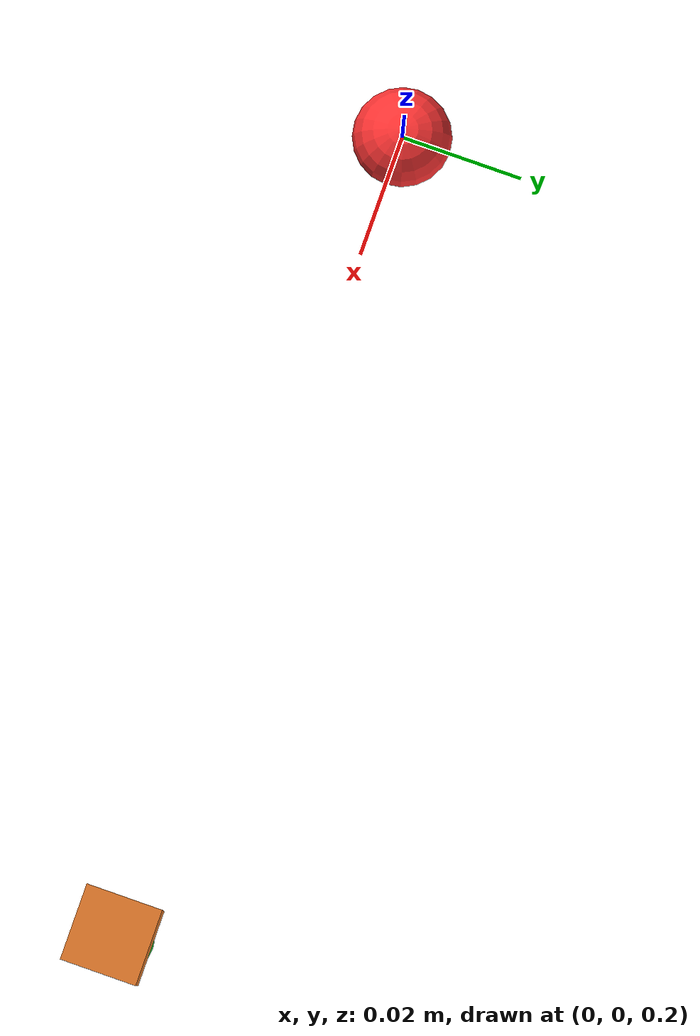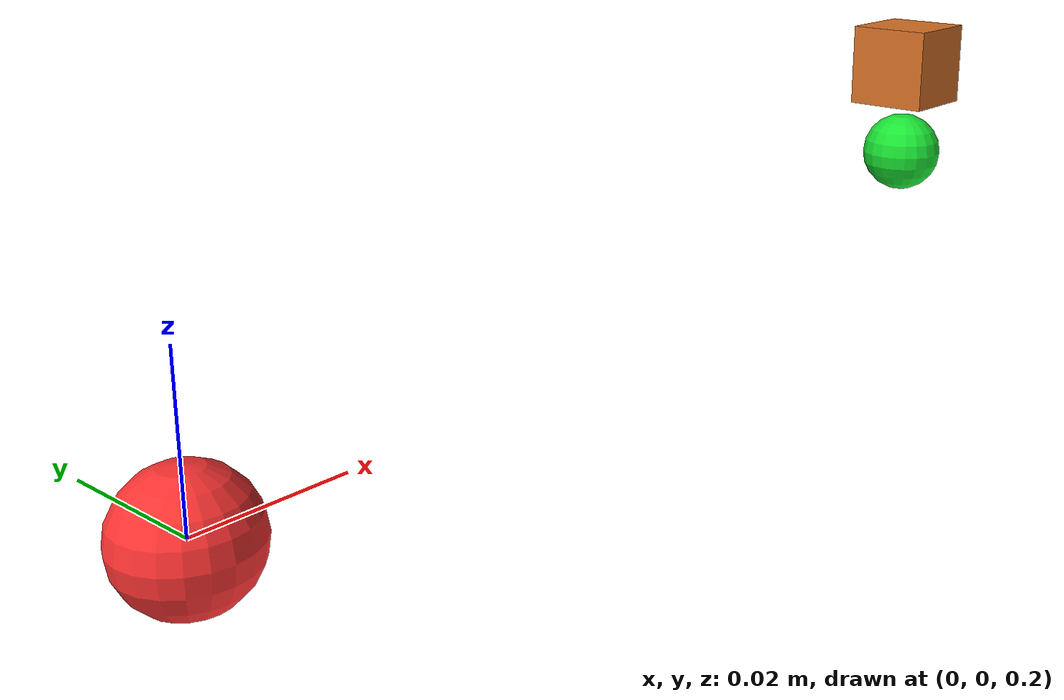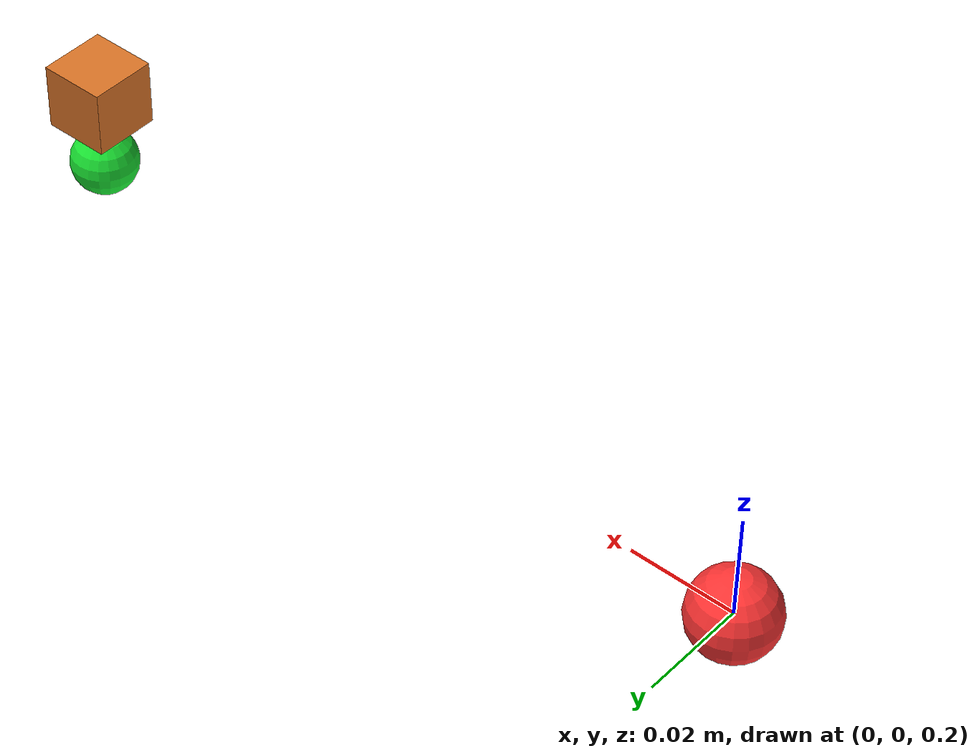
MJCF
<mujoco model="spoon fixture">
  <compiler angle="radian"/>
  <option timestep="0.001" gravity="0 0 -9.81" integrator="implicitfast" solver="Newton" iterations="50"/>
  <default>
    <default class="tool">
      <geom contype="1" conaffinity="1" group="3" friction="0.5 0.005 0.0001" solref="0.005 1" solimp="0.9 0.95 0.001" condim="3"/>
    </default>
  </default>
  <worldbody>
    <body name="fixture_base" pos="0 0 0.2">
      <body name="tool_mount" gravcomp="0">
        <site name="ft_site" pos="0 0 0" size="0.008" rgba="1 0.2 0.2 1"/>
        <geom name="tool_mount_geom" type="cylinder" size="0.016 0.008" pos="0 0 0.008" mass="0.03" class="tool" rgba="0.35 0.35 0.38 1"/>
        <geom name="tool_handle" type="box" size="0.05 0.004 0.003" pos="0.062 0 0.012" mass="0.02" class="tool" rgba="0.55 0.55 0.58 1"/>
        <geom name="bowl_bottom" type="box" size="0.0245 0.017 0.001" pos="0.1345 0 0.015" mass="0.012" class="tool" rgba="0.75 0.75 0.8 1"/>
        <geom name="bowl_back" type="box" size="0.0015 0.017 0.0045" pos="0.1105 0 0.0195" mass="0.005" class="tool" rgba="0.7 0.7 0.75 1"/>
        <geom name="bowl_left" type="box" size="0.023 0.001 0.0045" pos="0.1345 0.016 0.0195" mass="0.005" class="tool" rgba="0.7 0.7 0.75 1"/>
        <geom name="bowl_right" type="box" size="0.023 0.001 0.0045" pos="0.1345 -0.016 0.0195" mass="0.005" class="tool" rgba="0.7 0.7 0.75 1"/>
        <geom name="bowl_front" type="box" size="0.0015 0.017 0.0015" pos="0.1585 0 0.0165" mass="0.003" class="tool" rgba="0.65 0.65 0.7 1"/>
        <site name="tcp" pos="0.1345 0 0.016" size="0.006" rgba="0.1 0.9 0.2 1"/>
      </body>
    </body>
    <body name="food" pos="0.1345 0 0.23">
      <freejoint name="food_joint"/>
      <inertial mass="0.003" pos="0 0 0" diaginertia="7.2e-8 7.2e-8 7.2e-8"/>
      <geom name="food_box" type="box" size="0.006 0.006 0.006" mass="0.003" friction="0.5 0.005 0.0001" solref="0.005 1" solimp="0.9 0.95 0.001" condim="3" rgba="0.85 0.45 0.15 1"/>
    </body>
  </worldbody>
  <sensor>
    <force name="ft_force" site="ft_site"/>
    <torque name="ft_torque" site="ft_site"/>
  </sensor>
</mujoco>
